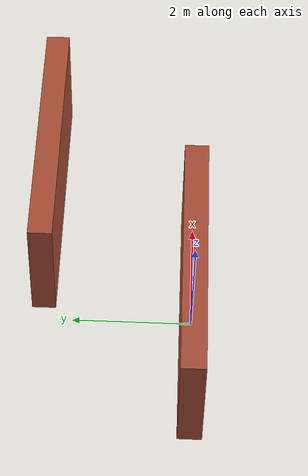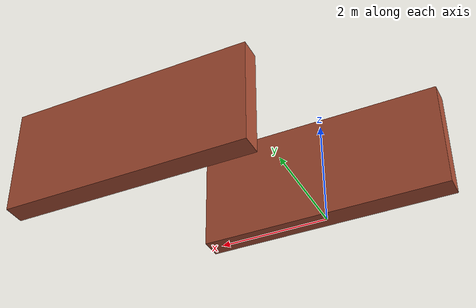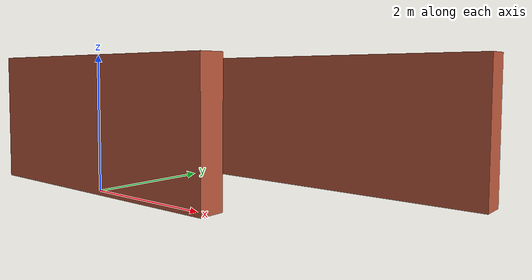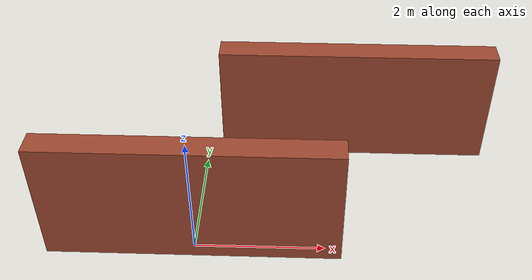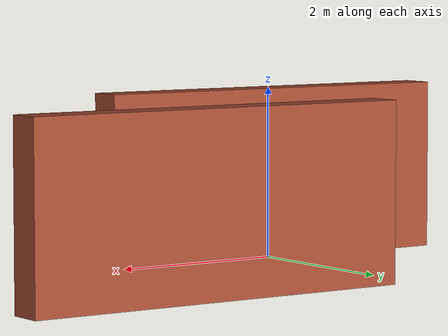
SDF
<?xml version='1.0'?>
<sdf version='1.6'>
  <!-- A区域障碍模型：两面墙 -->
  <model name='A_walls'>

    <!-- 整体位姿 -->
    <pose frame=''>-0 0 0 0 -0 0</pose>

    <!-- 组件1：前侧墙 -->
    <link name='Wall_1'>
        <!-- 碰撞参数 -->
        <collision name='Wall_1_Collision'>
            <!-- 几何尺寸 -->
            <geometry>
                    <box>
                        <size>4.5 0.4 2.0</size>
                    </box>
            </geometry>
            <!-- 质心坐标系位姿 -->
            <pose frame=''>0 0 1.0 0 -0 0</pose>
        </collision>
    <!-- 可视化参数 -->
      <visual name='Wall_1_Visual'>
        <!-- 质心坐标系位姿 -->
        <pose frame=''>0 0 1.0 0 -0 0</pose>
        <!-- 几何尺寸 -->
        <geometry>
            <box>
                <size>4.5 0.4 2.0</size>
            </box>
        </geometry>
        <!-- 材质 -->
        <material>
            <script>
                <uri>file://media/materials/scripts/gazebo.material</uri>
                <name>Gazebo/Bricks</name>
            </script>
            <ambient>1 1 1 1</ambient>
        </material>
        <meta>
            <layer>0</layer>
        </meta>
      </visual>
      <!-- 相对整体的位姿 -->
      <pose frame=''>0 0 0 0 -0 0</pose>
    </link>

        <!-- 组件2：后侧墙 -->
    <link name='Wall_2'>
        <!-- 碰撞参数 -->
        <collision name='Wall_2_Collision'>
            <!-- 几何尺寸 -->
            <geometry>
                    <box>
                        <size>4.5 0.4 2.0</size>
                    </box>
            </geometry>
            <!-- 质心坐标系位姿 -->
            <pose frame=''>0 0 1.0 0 -0 0</pose>
        </collision>
    <!-- 可视化参数 -->
      <visual name='Wall_2_Visual'>
        <!-- 质心坐标系位姿 -->
        <pose frame=''>0 0 1.0 0 -0 0</pose>
        <!-- 几何尺寸 -->
        <geometry>
            <box>
                <size>4.5 0.4 2.0</size>
            </box>
        </geometry>
        <!-- 材质 -->
        <material>
            <script>
                <uri>file://media/materials/scripts/gazebo.material</uri>
                <name>Gazebo/Bricks</name>
            </script>
            <ambient>1 1 1 1</ambient>
        </material>
        <meta>
            <layer>0</layer>
        </meta>
      </visual>
      <!-- 相对整体的位姿 -->
      <pose frame=''>2.5 2.5 0 0 -0 0</pose>
    </link>

    <static>1</static>
  </model>
</sdf>
